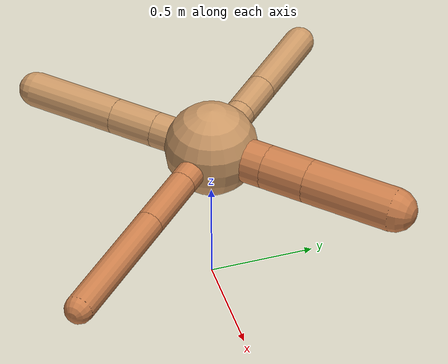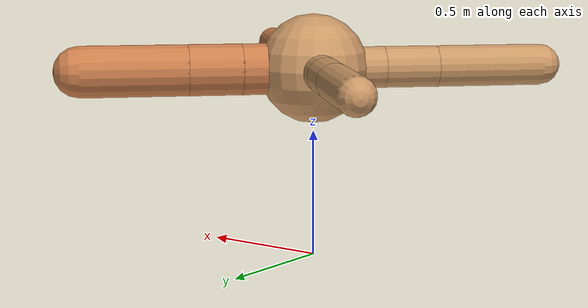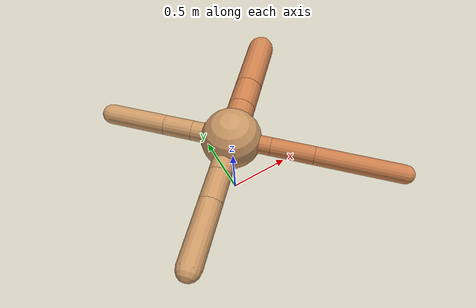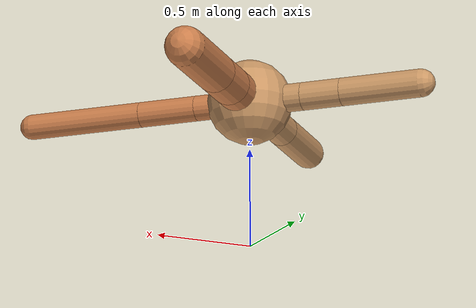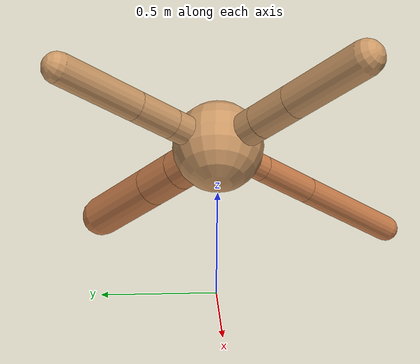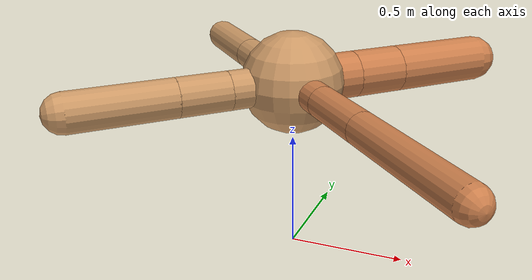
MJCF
<?xml version="1.0" ?>
<mujoco model="ant">

	<compiler angle="degree" coordinate="local" inertiafromgeom="true"/>

	<option integrator="RK4" timestep="0.01"/>

	<custom>

		<numeric data="0.0 0.0 0.55 1.0 0.0 0.0 0.0 0.0 1.0 0.0 -1.0 0.0 -1.0 0.0 1.0" name="init_qpos"/>

	</custom>

	<default>

		<joint armature="1" damping="1" limited="true"/>

		<geom conaffinity="0" condim="3" density="5.0" friction="1.5 0.1 0.1" margin="0.01" rgba="0.8 0.6 0.4 1"/>

	</default>

	<worldbody>

		<body name="torso" pos="0 0 0.75">

			<geom name="torso_geom" pos="0 0 0" size="0.21530901514734685" type="sphere"/>

			<!--joint armature="0" damping="0" limited="false" margin="0.01" name="root" pos="0 0 0" type="free"/-->

			<body name="front_left_leg" pos="0 0 0">

				<geom fromto="0 0 0 0.2 0.2 0" name="aux_1_geom" size="0.10045575320395031" type="capsule" rgba=".8 .5 .3 1"/>

				<body name="aux_1" pos="0.2 0.2 0">

					<joint axis="0 0 1" name="hip_1" pos="0.0 0.0 0.0" range="-40 40" type="hinge"/>

					<geom fromto="0 0 0 0.14812077613773825 0.14812077613773825 0" name="left_leg_geom" size="0.10045575320395031" type="capsule" rgba=".8 .5 .3 1"/>

					<body pos="0.14812077613773825 0.14812077613773825 0" name="front_left_foot">

						<joint axis="-1 1 0" name="ankle_1" pos="0.0 0.0 0.0" range="30 100" type="hinge"/>

						<geom fromto="0 0 0 0.2962415522754765 0.2962415522754765 0" name="left_ankle_geom" size="0.10045575320395031" type="capsule" rgba=".8 .5 .3 1"/>

					</body>

				</body>

			</body>

			<body name="front_right_leg" pos="0 0 0">

				<geom fromto="0 0 0 -0.2 0.2 0" name="aux_2_geom" size="0.07132985077715957" type="capsule"/>

				<body name="aux_2" pos="-0.2 0.2 0">

					<joint axis="0 0 1" name="hip_2" pos="0.0 0.0 0.0" range="-40 40" type="hinge"/>

					<geom fromto="0 0 0 -0.14480656090726093 0.14480656090726093 0" name="right_leg_geom" size="0.07132985077715957" type="capsule"/>

					<body pos="-0.14480656090726093 0.14480656090726093 0" name="front_right_foot">

						<joint axis="1 1 0" name="ankle_2" pos="0.0 0.0 0.0" range="-100 -30" type="hinge"/>

						<geom fromto="0 0 0 -0.28961312181452187 0.28961312181452187 0" name="right_ankle_geom" size="0.07132985077715957" type="capsule"/>

					</body>

				</body>

			</body>

			<body name="left_back_leg" pos="0 0 0">

				<geom fromto="0 0 0 -0.2 -0.2 0" name="aux_3_geom" size="0.08177256225142772" type="capsule"/>

				<body name="aux_3" pos="-0.2 -0.2 0">

					<joint axis="0 0 1" name="hip_3" pos="0.0 0.0 0.0" range="-40 40" type="hinge"/>

					<geom fromto="0 0 0 -0.15051957287232376 -0.15051957287232376 0" name="back_leg_geom" size="0.08177256225142772" type="capsule"/>

					<body pos="-0.15051957287232376 -0.15051957287232376 0" name="left_back_foot">

						<joint axis="-1 1 0" name="ankle_3" pos="0.0 0.0 0.0" range="-100 -30" type="hinge"/>

						<geom fromto="0 0 0 -0.3010391457446475 -0.3010391457446475 0" name="third_ankle_geom" size="0.08177256225142772" type="capsule"/>

					</body>

				</body>

			</body>

			<body name="right_back_leg" pos="0 0 0">

				<geom fromto="0 0 0 0.2 -0.2 0" name="aux_4_geom" size="0.06503035354349465" type="capsule" rgba=".8 .5 .3 1"/>

				<body name="aux_4" pos="0.2 -0.2 0">

					<joint axis="0 0 1" name="hip_4" pos="0.0 0.0 0.0" range="-40 40" type="hinge"/>

					<geom fromto="0 0 0 0.21387360655141202 -0.21387360655141202 0" name="rightback_leg_geom" size="0.06503035354349465" type="capsule" rgba=".8 .5 .3 1"/>

					<body pos="0.21387360655141202 -0.21387360655141202 0" name="right_back_foot">

						<joint axis="1 1 0" name="ankle_4" pos="0.0 0.0 0.0" range="30 100" type="hinge"/>

						<geom fromto="0 0 0 0.42774721310282404 -0.42774721310282404 0" name="fourth_ankle_geom" size="0.06503035354349465" type="capsule" rgba=".8 .5 .3 1"/>

					</body>

				</body>

			</body>

		</body>

	</worldbody>

	<actuator>

		<motor ctrllimited="true" ctrlrange="-1.0 1.0" joint="hip_4" gear="150"/>

		<motor ctrllimited="true" ctrlrange="-1.0 1.0" joint="ankle_4" gear="150"/>

		<motor ctrllimited="true" ctrlrange="-1.0 1.0" joint="hip_1" gear="150"/>

		<motor ctrllimited="true" ctrlrange="-1.0 1.0" joint="ankle_1" gear="150"/>

		<motor ctrllimited="true" ctrlrange="-1.0 1.0" joint="hip_2" gear="150"/>

		<motor ctrllimited="true" ctrlrange="-1.0 1.0" joint="ankle_2" gear="150"/>

		<motor ctrllimited="true" ctrlrange="-1.0 1.0" joint="hip_3" gear="150"/>

		<motor ctrllimited="true" ctrlrange="-1.0 1.0" joint="ankle_3" gear="150"/>

	</actuator>

</mujoco>
